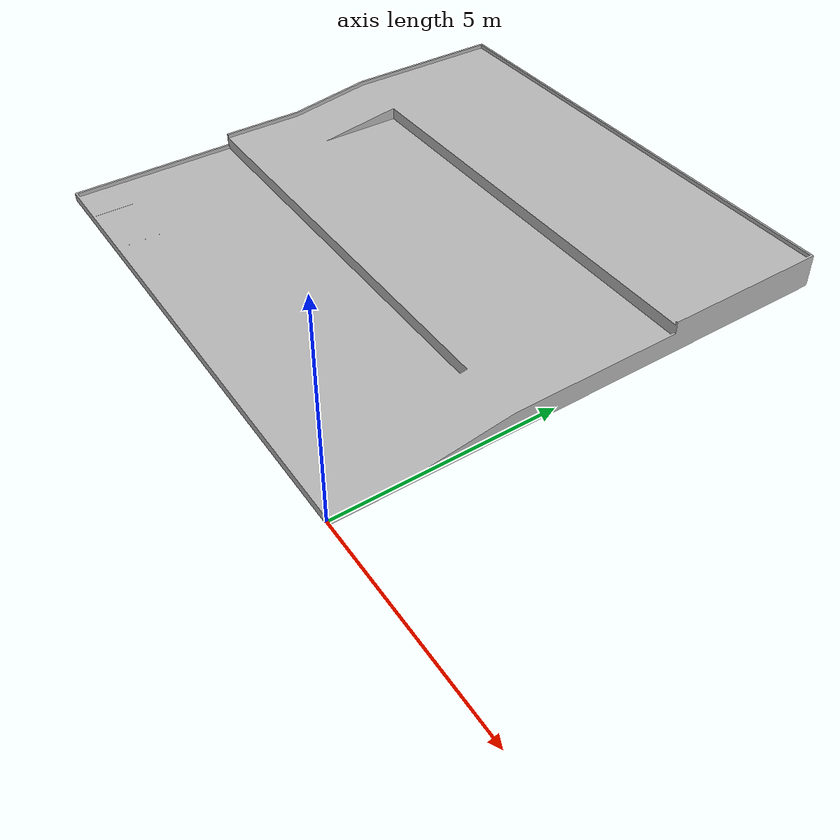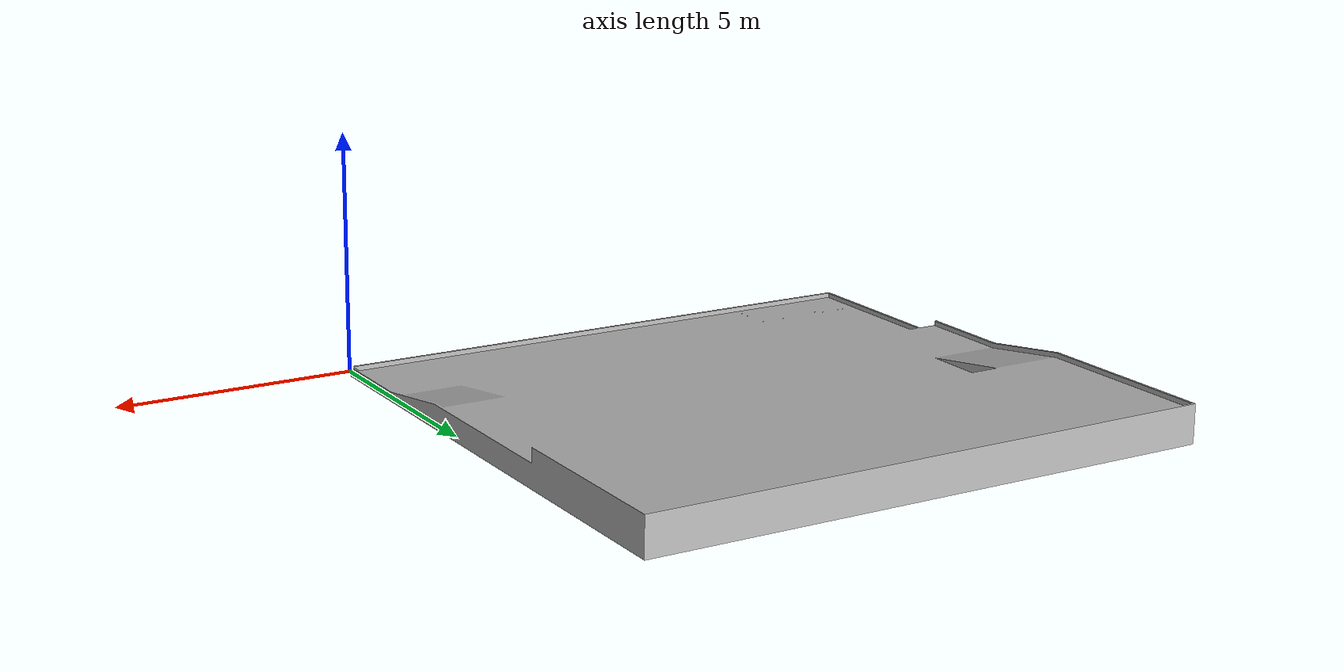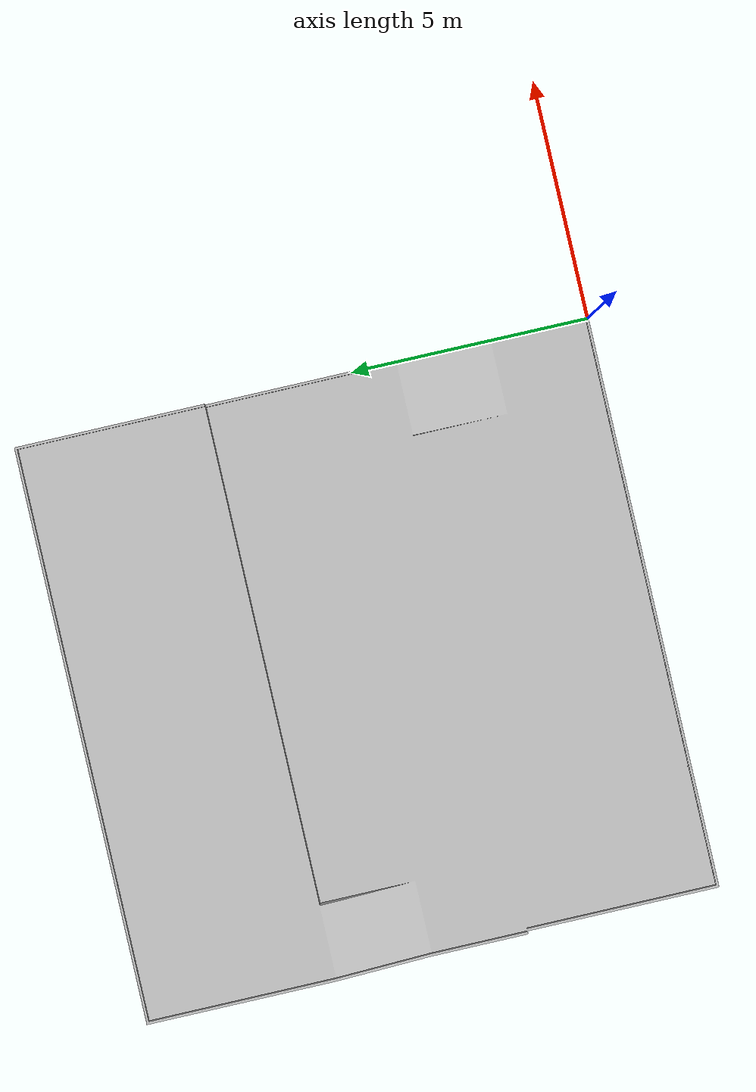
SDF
<?xml version="1.0"?>
<sdf version="1.5">
    <model name="field">
      <pose>0 0 0  0 0 0</pose>
      <static>true</static>
      <link name="body">
        <visual name="visual">
          <geometry>
            <mesh>
              <uri>model://field/meshes/Simworld.obj</uri>
              <scale>0.001 0.001 0.001</scale>
            </mesh>
          </geometry>
        </visual>
        <collision name="collision">
          <geometry>
            <mesh>
              <uri>model://field/meshes/Simworld.obj</uri>
              <scale>0.001 0.001 0.001</scale>
            </mesh>
          </geometry>
        </collision>
      </link>
    </model>
</sdf>
